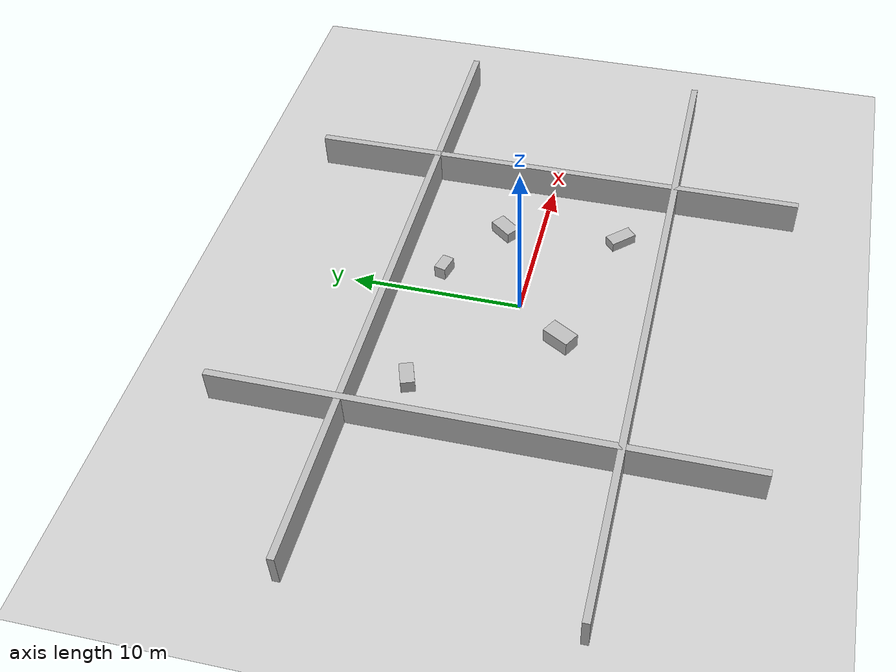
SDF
<?xml version="1.0"?>

<sdf version="1.6">
  <world name="multi_robot_world">

    <!-- =========================
         Sun
         ========================= -->
    <include>
      <uri>model://sun</uri>
    </include>

    <!-- =========================
         Ground
         ========================= -->
    <include>
      <uri>model://ground_plane</uri>
    </include>

    <!-- =========================
         Physics
         ========================= -->
    <physics type="ode">
      <real_time_update_rate>1000.0</real_time_update_rate>
      <max_step_size>0.001</max_step_size>
      <real_time_factor>1</real_time_factor>

      <ode>
        <solver>
          <type>quick</type>
          <iters>150</iters>
          <precon_iters>0</precon_iters>
          <sor>1.400000</sor>
          <use_dynamic_moi_rescaling>1</use_dynamic_moi_rescaling>
        </solver>

        <constraints>
          <cfm>0.00001</cfm>
          <erp>0.2</erp>
          <contact_max_correcting_vel>2000.000000</contact_max_correcting_vel>
          <contact_surface_layer>0.01000</contact_surface_layer>
        </constraints>
      </ode>
    </physics>

    <!-- =====================================================
         OUTER WALLS
         Environment: approximately 20m x 15m
         ===================================================== -->

    <model name="wall_north">
      <static>true</static>
      <pose>0 7.5 1.0 0 0 0</pose>
      <link name="link">

        <collision name="collision">
          <geometry>
            <box>
              <size>40 0.4 2</size>
            </box>
          </geometry>
        </collision>

        <visual name="visual">
          <geometry>
            <box>
              <size>40 0.4 2</size>
            </box>
          </geometry>
        </visual>

      </link>
    </model>

    <model name="wall_south">
      <static>true</static>
      <pose>0 -7.5 1.0 0 0 0</pose>
      <link name="link">

        <collision name="collision">
          <geometry>
            <box>
              <size>40 0.4 2</size>
            </box>
          </geometry>
        </collision>

        <visual name="visual">
          <geometry>
            <box>
              <size>40 0.4 2</size>
            </box>
          </geometry>
        </visual>

      </link>
    </model>

    <model name="wall_east">
      <static>true</static>
      <pose>10 0 1.0 0 0 0</pose>
      <link name="link">

        <collision name="collision">
          <geometry>
            <box>
              <size>0.4 30 2</size>
            </box>
          </geometry>
        </collision>

        <visual name="visual">
          <geometry>
            <box>
              <size>0.4 30 2</size>
            </box>
          </geometry>
        </visual>

      </link>
    </model>

    <model name="wall_west">
      <static>true</static>
      <pose>-10 0 1.0 0 0 0</pose>
      <link name="link">

        <collision name="collision">
          <geometry>
            <box>
              <size>0.4 30 2</size>
            </box>
          </geometry>
        </collision>

        <visual name="visual">
          <geometry>
            <box>
              <size>0.4 30 2</size>
            </box>
          </geometry>
        </visual>

      </link>
    </model>

    <model name="obstacle_01">
      <static>true</static>
      <pose>-6.8 4.8 0.4 0 0 0.35</pose>
      <link name="link">

        <collision name="collision">
          <geometry>
            <box>
              <size>1.4 0.8 0.8</size>
            </box>
          </geometry>
        </collision>

        <visual name="visual">
          <geometry>
            <box>
              <size>1.4 0.8 0.8</size>
            </box>
          </geometry>
        </visual>

      </link>
    </model>

    <model name="obstacle_02">
      <static>true</static>
      <pose>5.8 2.2 0.35 0 0 -0.65</pose>
      <link name="link">

        <collision name="collision">
          <geometry>
            <box>
              <size>0.9 1.5 0.7</size>
            </box>
          </geometry>
        </collision>

        <visual name="visual">
          <geometry>
            <box>
              <size>0.9 1.5 0.7</size>
            </box>
          </geometry>
        </visual>

      </link>
    </model>

    <model name="obstacle_03">
      <static>true</static>
      <pose>-2.2 -2.8 0.45 0 0 1.05</pose>
      <link name="link">

        <collision name="collision">
          <geometry>
            <box>
              <size>1.7 1.0 0.9</size>
            </box>
          </geometry>
        </collision>

        <visual name="visual">
          <geometry>
            <box>
              <size>1.7 1.0 0.9</size>
            </box>
          </geometry>
        </visual>

      </link>
    </model>

    <model name="obstacle_04">
      <static>true</static>
      <pose>1.8 5.0 0.4 0 0 -0.25</pose>
      <link name="link">

        <collision name="collision">
          <geometry>
            <box>
              <size>1.1 0.7 0.8</size>
            </box>
          </geometry>
        </collision>

        <visual name="visual">
          <geometry>
            <box>
              <size>1.1 0.7 0.8</size>
            </box>
          </geometry>
        </visual>

      </link>
    </model>

    <model name="obstacle_05">
      <static>true</static>
      <pose>6.5 -4.8 0.3 0 0 0.75</pose>
      <link name="link">

        <collision name="collision">
          <geometry>
            <box>
              <size>0.8 1.6 0.6</size>
            </box>
          </geometry>
        </collision>

        <visual name="visual">
          <geometry>
            <box>
              <size>0.8 1.6 0.6</size>
            </box>
          </geometry>
        </visual>

      </link>
    </model>

    <!-- =====================================================
         Scene
         ===================================================== -->

    <scene>
      <ambient>0.4 0.4 0.4 1</ambient>
      <background>0.7 0.7 0.7 1</background>
      <shadows>true</shadows>
    </scene>

    <!-- =====================================================
         Camera
         ===================================================== -->

    <gui fullscreen="0">
      <camera name="user_camera">
        <pose>0 0 30 0 1.5708 0</pose>
        <view_controller>orbit</view_controller>
      </camera>
    </gui>

  </world>
</sdf>
